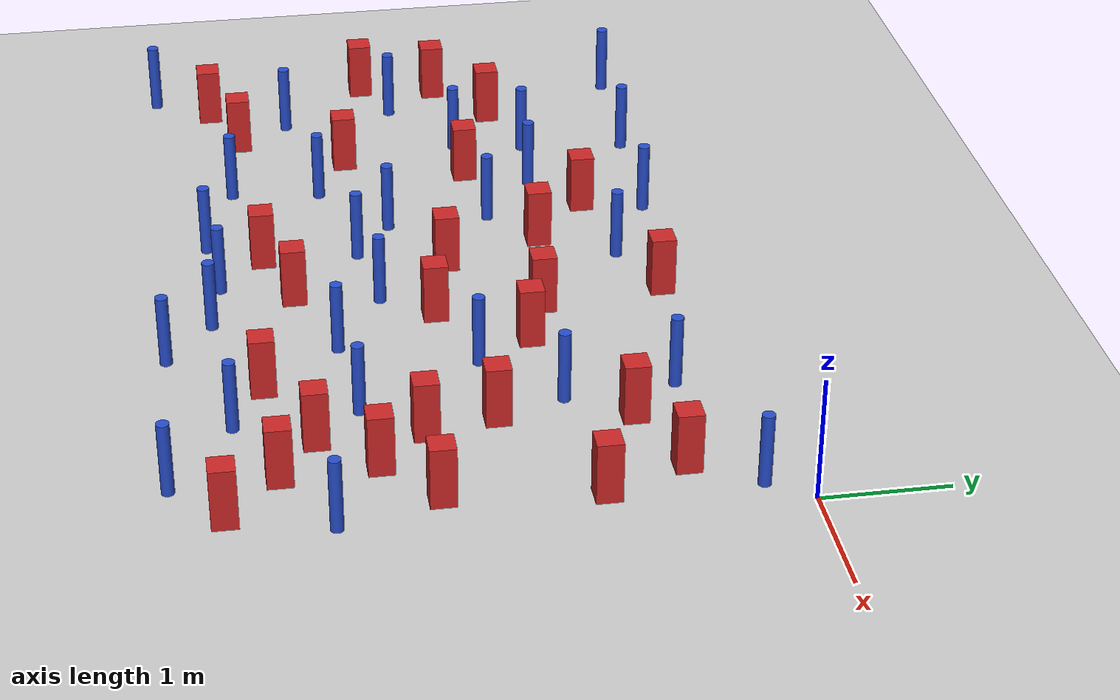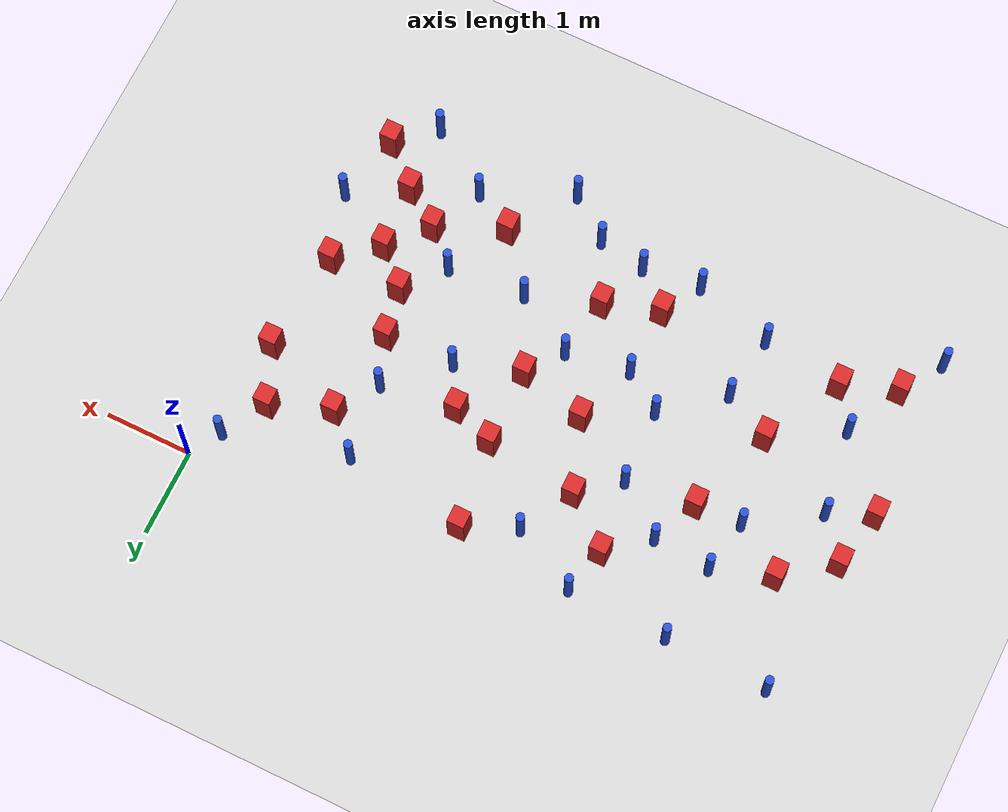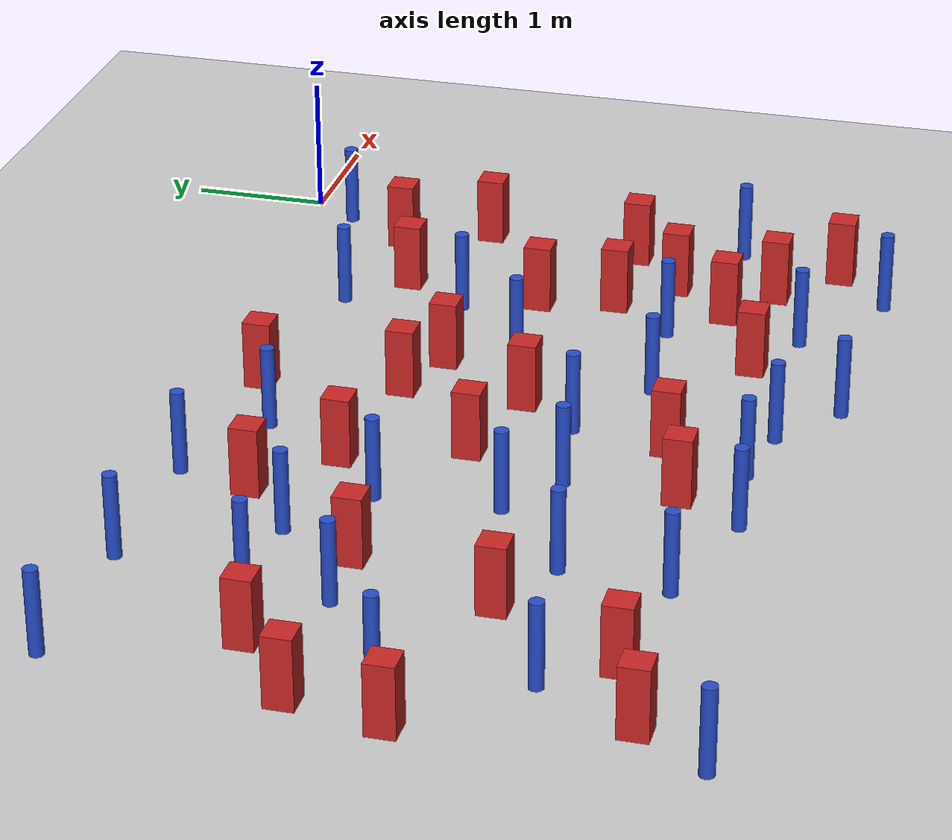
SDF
<sdf version="1.6">
 <world name="default">
  <model name="ground_plane">
   <static>1</static>
   <link name="link">
    <collision name="collision">
     <geometry><plane><normal>0 0 1</normal><size>100 100</size></plane></geometry>
     <surface><friction><ode><mu>100</mu><mu2>50</mu2></ode></friction></surface>
    </collision>
    <visual name="visual">
     <cast_shadows>0</cast_shadows>
     <geometry><plane><normal>0 0 1</normal><size>100 100</size></plane></geometry>
     <material>
      <ambient>1.0 1.0 1.0 1.0</ambient>
      <diffuse>0.8 0.8 0.8 1.0</diffuse>
      <specular>0.01 0.01 0.01 1.000000</specular>
     </material>
    </visual>
   </link>
  </model>
  <model name="pole_obstacle0">
   <static>true</static>
   <pose>-5.73621317295 -1.86977070437 2.88873142074e-08 -9.90536689445e-09 4.60219948999e-07 -1.20965994956e-07</pose>
   <link name="link">
    <pose>0 0 0.3 0 -0 0</pose>
    <inertial>
     <mass>1</mass>
     <inertia><ixx>0.145833</ixx><ixy>0</ixy><ixz>0</ixz><iyy>0.145833</iyy><iyz>0</iyz><izz>0.125</izz></inertia>
    </inertial>
    <collision name="collision">
     <geometry><cylinder><radius>0.05</radius><length>.6</length></cylinder></geometry>
    </collision>
    <visual name="visual">
     <geometry><cylinder><radius>0.05</radius><length>.6</length></cylinder></geometry>
     <material>
      <script><name>Gazebo/Blue</name><uri>file://media/materials/scripts/gazebo.material</uri></script>
     </material>
    </visual>
   </link>
  </model>
  <model name="square_post_obstacle3">
   <static>true</static>
   <pose>-3.93490845107 -3.70287970312 8.22691968438e-08 7.2212513382e-06 -7.54495500217e-07 2.29674213826e-05</pose>
   <link name="link">
    <pose>0 0 0.25 0 -0 0</pose>
    <inertial>
     <mass>100</mass>
     <inertia>
      <ixx>0.166667</ixx>
      <ixy>0</ixy>
      <ixz>0</ixz>
      <iyy>0.166667</iyy>
      <iyz>0</iyz>
      <izz>0.166667</izz>
     </inertia>
    </inertial>
    <collision name="collision"><geometry><box><size>.2 .2 .5</size></box></geometry></collision>
    <visual name="visual">
     <geometry><box><size>.2 .2 .5</size></box></geometry>
     <material>
      <script><name>Gazebo/Red</name><uri>file://media/materials/scripts/gazebo.material</uri></script>
     </material>
    </visual>
   </link>
  </model>
  <model name="square_post_obstacle8">
   <static>true</static>
   <pose>-6.65443698681 -4.00906714522 8.22691968438e-08 7.2212513382e-06 -7.54495500217e-07 2.29674213826e-05</pose>
   <link name="link">
    <pose>0 0 0.25 0 -0 0</pose>
    <inertial>
     <mass>100</mass>
     <inertia>
      <ixx>0.166667</ixx>
      <ixy>0</ixy>
      <ixz>0</ixz>
      <iyy>0.166667</iyy>
      <iyz>0</iyz>
      <izz>0.166667</izz>
     </inertia>
    </inertial>
    <collision name="collision"><geometry><box><size>.2 .2 .5</size></box></geometry></collision>
    <visual name="visual">
     <geometry><box><size>.2 .2 .5</size></box></geometry>
     <material>
      <script><name>Gazebo/Red</name><uri>file://media/materials/scripts/gazebo.material</uri></script>
     </material>
    </visual>
   </link>
  </model>
  <model name="square_post_obstacle14">
   <static>true</static>
   <pose>-2.40461880925 -1.69817275104 8.22691968438e-08 7.2212513382e-06 -7.54495500217e-07 2.29674213826e-05</pose>
   <link name="link">
    <pose>0 0 0.25 0 -0 0</pose>
    <inertial>
     <mass>100</mass>
     <inertia>
      <ixx>0.166667</ixx>
      <ixy>0</ixy>
      <ixz>0</ixz>
      <iyy>0.166667</iyy>
      <iyz>0</iyz>
      <izz>0.166667</izz>
     </inertia>
    </inertial>
    <collision name="collision"><geometry><box><size>.2 .2 .5</size></box></geometry></collision>
    <visual name="visual">
     <geometry><box><size>.2 .2 .5</size></box></geometry>
     <material>
      <script><name>Gazebo/Red</name><uri>file://media/materials/scripts/gazebo.material</uri></script>
     </material>
    </visual>
   </link>
  </model>
  <model name="square_post_obstacle15">
   <static>true</static>
   <pose>-6.2994854559 -1.49680176613 8.22691968438e-08 7.2212513382e-06 -7.54495500217e-07 2.29674213826e-05</pose>
   <link name="link">
    <pose>0 0 0.25 0 -0 0</pose>
    <inertial>
     <mass>100</mass>
     <inertia>
      <ixx>0.166667</ixx>
      <ixy>0</ixy>
      <ixz>0</ixz>
      <iyy>0.166667</iyy>
      <iyz>0</iyz>
      <izz>0.166667</izz>
     </inertia>
    </inertial>
    <collision name="collision"><geometry><box><size>.2 .2 .5</size></box></geometry></collision>
    <visual name="visual">
     <geometry><box><size>.2 .2 .5</size></box></geometry>
     <material>
      <script><name>Gazebo/Red</name><uri>file://media/materials/scripts/gazebo.material</uri></script>
     </material>
    </visual>
   </link>
  </model>
  <model name="pole_obstacle13">
   <static>true</static>
   <pose>-2.48907376419 -3.20972706752 2.88873142074e-08 -9.90536690232e-09 4.6021994898e-07 -1.20965994968e-07</pose>
   <link name="link">
    <pose>0 0 0.3 0 -0 0</pose>
    <inertial>
     <mass>1</mass>
     <inertia><ixx>0.145833</ixx><ixy>0</ixy><ixz>0</ixz><iyy>0.145833</iyy><iyz>0</iyz><izz>0.125</izz></inertia>
    </inertial>
    <collision name="collision">
     <geometry><cylinder><radius>0.05</radius><length>.6</length></cylinder></geometry>
    </collision>
    <visual name="visual">
     <geometry><cylinder><radius>0.05</radius><length>.6</length></cylinder></geometry>
     <material>
      <script><name>Gazebo/Blue</name><uri>file://media/materials/scripts/gazebo.material</uri></script>
     </material>
    </visual>
   </link>
  </model>
  <model name="pole_obstacle14">
   <static>true</static>
   <pose>-3.62674581443 -0.778643688354 2.88873142074e-08 -9.90536690901e-09 4.60219948964e-07 -1.20965994979e-07</pose>
   <link name="link">
    <pose>0 0 0.3 0 -0 0</pose>
    <inertial>
     <mass>1</mass>
     <inertia><ixx>0.145833</ixx><ixy>0</ixy><ixz>0</ixz><iyy>0.145833</iyy><iyz>0</iyz><izz>0.125</izz></inertia>
    </inertial>
    <collision name="collision">
     <geometry><cylinder><radius>0.05</radius><length>.6</length></cylinder></geometry>
    </collision>
    <visual name="visual">
     <geometry><cylinder><radius>0.05</radius><length>.6</length></cylinder></geometry>
     <material>
      <script><name>Gazebo/Blue</name><uri>file://media/materials/scripts/gazebo.material</uri></script>
     </material>
    </visual>
   </link>
  </model>
  <model name="square_post_obstacle34">
   <static>true</static>
   <pose>-0.793222124158 -3.78897731722 8.22691968438e-08 7.2212513382e-06 -7.54495500217e-07 2.29674213826e-05</pose>
   <link name="link">
    <pose>0 0 0.25 0 -0 0</pose>
    <inertial>
     <mass>100</mass>
     <inertia>
      <ixx>0.166667</ixx>
      <ixy>0</ixy>
      <ixz>0</ixz>
      <iyy>0.166667</iyy>
      <iyz>0</iyz>
      <izz>0.166667</izz>
     </inertia>
    </inertial>
    <collision name="collision"><geometry><box><size>.2 .2 .5</size></box></geometry></collision>
    <visual name="visual">
     <geometry><box><size>.2 .2 .5</size></box></geometry>
     <material>
      <script><name>Gazebo/Red</name><uri>file://media/materials/scripts/gazebo.material</uri></script>
     </material>
    </visual>
   </link>
  </model>
  <model name="pole_obstacle31">
   <static>true</static>
   <pose>-4.36352741709 -2.6111760046 2.88873142074e-08 -9.90536690245e-09 4.6021994898e-07 -1.20965994966e-07</pose>
   <link name="link">
    <pose>0 0 0.3 0 -0 0</pose>
    <inertial>
     <mass>1</mass>
     <inertia><ixx>0.145833</ixx><ixy>0</ixy><ixz>0</ixz><iyy>0.145833</iyy><iyz>0</iyz><izz>0.125</izz></inertia>
    </inertial>
    <collision name="collision">
     <geometry><cylinder><radius>0.05</radius><length>.6</length></cylinder></geometry>
    </collision>
    <visual name="visual">
     <geometry><cylinder><radius>0.05</radius><length>.6</length></cylinder></geometry>
     <material>
      <script><name>Gazebo/Blue</name><uri>file://media/materials/scripts/gazebo.material</uri></script>
     </material>
    </visual>
   </link>
  </model>
  <model name="square_post_obstacle50">
   <static>true</static>
   <pose>-1.3356000954 -2.11925762692 8.22691968438e-08 7.2212513382e-06 -7.54495500217e-07 2.29674213826e-05</pose>
   <link name="link">
    <pose>0 0 0.25 0 -0 0</pose>
    <inertial>
     <mass>100</mass>
     <inertia>
      <ixx>0.166667</ixx>
      <ixy>0</ixy>
      <ixz>0</ixz>
      <iyy>0.166667</iyy>
      <iyz>0</iyz>
      <izz>0.166667</izz>
     </inertia>
    </inertial>
    <collision name="collision"><geometry><box><size>.2 .2 .5</size></box></geometry></collision>
    <visual name="visual">
     <geometry><box><size>.2 .2 .5</size></box></geometry>
     <material>
      <script><name>Gazebo/Red</name><uri>file://media/materials/scripts/gazebo.material</uri></script>
     </material>
    </visual>
   </link>
  </model>
  <model name="square_post_obstacle53">
   <static>true</static>
   <pose>-0.530552398193 -0.843113250374 8.22691968438e-08 7.2212513382e-06 -7.54495500217e-07 2.29674213826e-05</pose>
   <link name="link">
    <pose>0 0 0.25 0 -0 0</pose>
    <inertial>
     <mass>100</mass>
     <inertia>
      <ixx>0.166667</ixx>
      <ixy>0</ixy>
      <ixz>0</ixz>
      <iyy>0.166667</iyy>
      <iyz>0</iyz>
      <izz>0.166667</izz>
     </inertia>
    </inertial>
    <collision name="collision"><geometry><box><size>.2 .2 .5</size></box></geometry></collision>
    <visual name="visual">
     <geometry><box><size>.2 .2 .5</size></box></geometry>
     <material>
      <script><name>Gazebo/Red</name><uri>file://media/materials/scripts/gazebo.material</uri></script>
     </material>
    </visual>
   </link>
  </model>
  <model name="square_post_obstacle71">
   <static>true</static>
   <pose>-3.02695674756 -0.522819640471 8.22691968438e-08 7.2212513382e-06 -7.54495500217e-07 2.29674213826e-05</pose>
   <link name="link">
    <pose>0 0 0.25 0 -0 0</pose>
    <inertial>
     <mass>100</mass>
     <inertia>
      <ixx>0.166667</ixx>
      <ixy>0</ixy>
      <ixz>0</ixz>
      <iyy>0.166667</iyy>
      <iyz>0</iyz>
      <izz>0.166667</izz>
     </inertia>
    </inertial>
    <collision name="collision"><geometry><box><size>.2 .2 .5</size></box></geometry></collision>
    <visual name="visual">
     <geometry><box><size>.2 .2 .5</size></box></geometry>
     <material>
      <script><name>Gazebo/Red</name><uri>file://media/materials/scripts/gazebo.material</uri></script>
     </material>
    </visual>
   </link>
  </model>
  <model name="square_post_obstacle74">
   <static>true</static>
   <pose>-0.837840556071 -3.05200155905 8.22691968438e-08 7.2212513382e-06 -7.54495500217e-07 2.29674213826e-05</pose>
   <link name="link">
    <pose>0 0 0.25 0 -0 0</pose>
    <inertial>
     <mass>100</mass>
     <inertia>
      <ixx>0.166667</ixx>
      <ixy>0</ixy>
      <ixz>0</ixz>
      <iyy>0.166667</iyy>
      <iyz>0</iyz>
      <izz>0.166667</izz>
     </inertia>
    </inertial>
    <collision name="collision"><geometry><box><size>.2 .2 .5</size></box></geometry></collision>
    <visual name="visual">
     <geometry><box><size>.2 .2 .5</size></box></geometry>
     <material>
      <script><name>Gazebo/Red</name><uri>file://media/materials/scripts/gazebo.material</uri></script>
     </material>
    </visual>
   </link>
  </model>
  <model name="square_post_obstacle76">
   <static>true</static>
   <pose>-1.21968288241 -2.67342159476 8.22691968438e-08 7.2212513382e-06 -7.54495500217e-07 2.29674213826e-05</pose>
   <link name="link">
    <pose>0 0 0.25 0 -0 0</pose>
    <inertial>
     <mass>100</mass>
     <inertia>
      <ixx>0.166667</ixx>
      <ixy>0</ixy>
      <ixz>0</ixz>
      <iyy>0.166667</iyy>
      <iyz>0</iyz>
      <izz>0.166667</izz>
     </inertia>
    </inertial>
    <collision name="collision"><geometry><box><size>.2 .2 .5</size></box></geometry></collision>
    <visual name="visual">
     <geometry><box><size>.2 .2 .5</size></box></geometry>
     <material>
      <script><name>Gazebo/Red</name><uri>file://media/materials/scripts/gazebo.material</uri></script>
     </material>
    </visual>
   </link>
  </model>
  <model name="pole_obstacle76">
   <static>true</static>
   <pose>-6.33775262903 -3.33607033092 2.88873142074e-08 -9.90536690245e-09 4.6021994898e-07 -1.20965994966e-07</pose>
   <link name="link">
    <pose>0 0 0.3 0 -0 0</pose>
    <inertial>
     <mass>1</mass>
     <inertia><ixx>0.145833</ixx><ixy>0</ixy><ixz>0</ixz><iyy>0.145833</iyy><iyz>0</iyz><izz>0.125</izz></inertia>
    </inertial>
    <collision name="collision">
     <geometry><cylinder><radius>0.05</radius><length>.6</length></cylinder></geometry>
    </collision>
    <visual name="visual">
     <geometry><cylinder><radius>0.05</radius><length>.6</length></cylinder></geometry>
     <material>
      <script><name>Gazebo/Blue</name><uri>file://media/materials/scripts/gazebo.material</uri></script>
     </material>
    </visual>
   </link>
  </model>
  <model name="pole_obstacle78">
   <static>true</static>
   <pose>-4.38180615247 -0.403295523184 2.88873142074e-08 -9.90536689981e-09 4.60219948986e-07 -1.20965994962e-07</pose>
   <link name="link">
    <pose>0 0 0.3 0 -0 0</pose>
    <inertial>
     <mass>1</mass>
     <inertia><ixx>0.145833</ixx><ixy>0</ixy><ixz>0</ixz><iyy>0.145833</iyy><iyz>0</iyz><izz>0.125</izz></inertia>
    </inertial>
    <collision name="collision">
     <geometry><cylinder><radius>0.05</radius><length>.6</length></cylinder></geometry>
    </collision>
    <visual name="visual">
     <geometry><cylinder><radius>0.05</radius><length>.6</length></cylinder></geometry>
     <material>
      <script><name>Gazebo/Blue</name><uri>file://media/materials/scripts/gazebo.material</uri></script>
     </material>
    </visual>
   </link>
  </model>
  <model name="square_post_obstacle79">
   <static>true</static>
   <pose>-1.22335206399 -3.49086152424 8.22691968438e-08 7.2212513382e-06 -7.54495500217e-07 2.29674213826e-05</pose>
   <link name="link">
    <pose>0 0 0.25 0 -0 0</pose>
    <inertial>
     <mass>100</mass>
     <inertia>
      <ixx>0.166667</ixx>
      <ixy>0</ixy>
      <ixz>0</ixz>
      <iyy>0.166667</iyy>
      <iyz>0</iyz>
      <izz>0.166667</izz>
     </inertia>
    </inertial>
    <collision name="collision"><geometry><box><size>.2 .2 .5</size></box></geometry></collision>
    <visual name="visual">
     <geometry><box><size>.2 .2 .5</size></box></geometry>
     <material>
      <script><name>Gazebo/Red</name><uri>file://media/materials/scripts/gazebo.material</uri></script>
     </material>
    </visual>
   </link>
  </model>
  <model name="pole_obstacle82">
   <static>true</static>
   <pose>-3.52373916862 -4.07436821478 2.88873142074e-08 -9.90536689859e-09 4.60219948989e-07 -1.20965994961e-07</pose>
   <link name="link">
    <pose>0 0 0.3 0 -0 0</pose>
    <inertial>
     <mass>1</mass>
     <inertia><ixx>0.145833</ixx><ixy>0</ixy><ixz>0</ixz><iyy>0.145833</iyy><iyz>0</iyz><izz>0.125</izz></inertia>
    </inertial>
    <collision name="collision">
     <geometry><cylinder><radius>0.05</radius><length>.6</length></cylinder></geometry>
    </collision>
    <visual name="visual">
     <geometry><cylinder><radius>0.05</radius><length>.6</length></cylinder></geometry>
     <material>
      <script><name>Gazebo/Blue</name><uri>file://media/materials/scripts/gazebo.material</uri></script>
     </material>
    </visual>
   </link>
  </model>
  <model name="pole_obstacle85">
   <static>true</static>
   <pose>-1.53095376728 -1.57754676346 2.88873142074e-08 -9.90536689672e-09 4.60219948993e-07 -1.20965994959e-07</pose>
   <link name="link">
    <pose>0 0 0.3 0 -0 0</pose>
    <inertial>
     <mass>1</mass>
     <inertia><ixx>0.145833</ixx><ixy>0</ixy><ixz>0</ixz><iyy>0.145833</iyy><iyz>0</iyz><izz>0.125</izz></inertia>
    </inertial>
    <collision name="collision">
     <geometry><cylinder><radius>0.05</radius><length>.6</length></cylinder></geometry>
    </collision>
    <visual name="visual">
     <geometry><cylinder><radius>0.05</radius><length>.6</length></cylinder></geometry>
     <material>
      <script><name>Gazebo/Blue</name><uri>file://media/materials/scripts/gazebo.material</uri></script>
     </material>
    </visual>
   </link>
  </model>
  <model name="pole_obstacle86">
   <static>true</static>
   <pose>-5.63110705443 -1.26578327563 2.88873142074e-08 -9.90536689445e-09 4.60219948999e-07 -1.20965994956e-07</pose>
   <link name="link">
    <pose>0 0 0.3 0 -0 0</pose>
    <inertial>
     <mass>1</mass>
     <inertia><ixx>0.145833</ixx><ixy>0</ixy><ixz>0</ixz><iyy>0.145833</iyy><iyz>0</iyz><izz>0.125</izz></inertia>
    </inertial>
    <collision name="collision">
     <geometry><cylinder><radius>0.05</radius><length>.6</length></cylinder></geometry>
    </collision>
    <visual name="visual">
     <geometry><cylinder><radius>0.05</radius><length>.6</length></cylinder></geometry>
     <material>
      <script><name>Gazebo/Blue</name><uri>file://media/materials/scripts/gazebo.material</uri></script>
     </material>
    </visual>
   </link>
  </model>
  <model name="square_post_obstacle83">
   <static>true</static>
   <pose>-6.98923689157 -2.59152795305 8.22691968438e-08 7.2212513382e-06 -7.54495500217e-07 2.29674213826e-05</pose>
   <link name="link">
    <pose>0 0 0.25 0 -0 0</pose>
    <inertial>
     <mass>100</mass>
     <inertia>
      <ixx>0.166667</ixx>
      <ixy>0</ixy>
      <ixz>0</ixz>
      <iyy>0.166667</iyy>
      <iyz>0</iyz>
      <izz>0.166667</izz>
     </inertia>
    </inertial>
    <collision name="collision"><geometry><box><size>.2 .2 .5</size></box></geometry></collision>
    <visual name="visual">
     <geometry><box><size>.2 .2 .5</size></box></geometry>
     <material>
      <script><name>Gazebo/Red</name><uri>file://media/materials/scripts/gazebo.material</uri></script>
     </material>
    </visual>
   </link>
  </model>
  <model name="pole_obstacle97">
   <static>true</static>
   <pose>-1.59131819325 -3.13100942302 2.88873142074e-08 -9.90536689791e-09 4.6021994899e-07 -1.20965994959e-07</pose>
   <link name="link">
    <pose>0 0 0.3 0 -0 0</pose>
    <inertial>
     <mass>1</mass>
     <inertia><ixx>0.145833</ixx><ixy>0</ixy><ixz>0</ixz><iyy>0.145833</iyy><iyz>0</iyz><izz>0.125</izz></inertia>
    </inertial>
    <collision name="collision">
     <geometry><cylinder><radius>0.05</radius><length>.6</length></cylinder></geometry>
    </collision>
    <visual name="visual">
     <geometry><cylinder><radius>0.05</radius><length>.6</length></cylinder></geometry>
     <material>
      <script><name>Gazebo/Blue</name><uri>file://media/materials/scripts/gazebo.material</uri></script>
     </material>
    </visual>
   </link>
  </model>
  <model name="square_post_obstacle88">
   <static>true</static>
   <pose>-0.260927767086 -1.48294449888 8.22691968438e-08 7.2212513382e-06 -7.54495500217e-07 2.29674213826e-05</pose>
   <link name="link">
    <pose>0 0 0.25 0 -0 0</pose>
    <inertial>
     <mass>100</mass>
     <inertia>
      <ixx>0.166667</ixx>
      <ixy>0</ixy>
      <ixz>0</ixz>
      <iyy>0.166667</iyy>
      <iyz>0</iyz>
      <izz>0.166667</izz>
     </inertia>
    </inertial>
    <collision name="collision"><geometry><box><size>.2 .2 .5</size></box></geometry></collision>
    <visual name="visual">
     <geometry><box><size>.2 .2 .5</size></box></geometry>
     <material>
      <script><name>Gazebo/Red</name><uri>file://media/materials/scripts/gazebo.material</uri></script>
     </material>
    </visual>
   </link>
  </model>
  <model name="pole_obstacle105">
   <static>true</static>
   <pose>-6.73304356078 -0.330908894897 2.88873142074e-08 -9.90536689981e-09 4.60219948986e-07 -1.20965994962e-07</pose>
   <link name="link">
    <pose>0 0 0.3 0 -0 0</pose>
    <inertial>
     <mass>1</mass>
     <inertia><ixx>0.145833</ixx><ixy>0</ixy><ixz>0</ixz><iyy>0.145833</iyy><iyz>0</iyz><izz>0.125</izz></inertia>
    </inertial>
    <collision name="collision">
     <geometry><cylinder><radius>0.05</radius><length>.6</length></cylinder></geometry>
    </collision>
    <visual name="visual">
     <geometry><cylinder><radius>0.05</radius><length>.6</length></cylinder></geometry>
     <material>
      <script><name>Gazebo/Blue</name><uri>file://media/materials/scripts/gazebo.material</uri></script>
     </material>
    </visual>
   </link>
  </model>
  <model name="square_post_obstacle96">
   <static>true</static>
   <pose>-6.85889684813 -1.93279088022 8.22691968438e-08 7.2212513382e-06 -7.54495500217e-07 2.29674213826e-05</pose>
   <link name="link">
    <pose>0 0 0.25 0 -0 0</pose>
    <inertial>
     <mass>100</mass>
     <inertia>
      <ixx>0.166667</ixx>
      <ixy>0</ixy>
      <ixz>0</ixz>
      <iyy>0.166667</iyy>
      <iyz>0</iyz>
      <izz>0.166667</izz>
     </inertia>
    </inertial>
    <collision name="collision"><geometry><box><size>.2 .2 .5</size></box></geometry></collision>
    <visual name="visual">
     <geometry><box><size>.2 .2 .5</size></box></geometry>
     <material>
      <script><name>Gazebo/Red</name><uri>file://media/materials/scripts/gazebo.material</uri></script>
     </material>
    </visual>
   </link>
  </model>
  <model name="square_post_obstacle101">
   <static>true</static>
   <pose>-3.65767526462 -2.20529674431 8.22691968438e-08 7.2212513382e-06 -7.54495500217e-07 2.29674213826e-05</pose>
   <link name="link">
    <pose>0 0 0.25 0 -0 0</pose>
    <inertial>
     <mass>100</mass>
     <inertia>
      <ixx>0.166667</ixx>
      <ixy>0</ixy>
      <ixz>0</ixz>
      <iyy>0.166667</iyy>
      <iyz>0</iyz>
      <izz>0.166667</izz>
     </inertia>
    </inertial>
    <collision name="collision"><geometry><box><size>.2 .2 .5</size></box></geometry></collision>
    <visual name="visual">
     <geometry><box><size>.2 .2 .5</size></box></geometry>
     <material>
      <script><name>Gazebo/Red</name><uri>file://media/materials/scripts/gazebo.material</uri></script>
     </material>
    </visual>
   </link>
  </model>
  <model name="pole_obstacle117">
   <static>true</static>
   <pose>-4.4074099381 -1.75474437956 2.88873142074e-08 -9.90536689445e-09 4.60219948999e-07 -1.20965994956e-07</pose>
   <link name="link">
    <pose>0 0 0.3 0 -0 0</pose>
    <inertial>
     <mass>1</mass>
     <inertia><ixx>0.145833</ixx><ixy>0</ixy><ixz>0</ixz><iyy>0.145833</iyy><iyz>0</iyz><izz>0.125</izz></inertia>
    </inertial>
    <collision name="collision">
     <geometry><cylinder><radius>0.05</radius><length>.6</length></cylinder></geometry>
    </collision>
    <visual name="visual">
     <geometry><cylinder><radius>0.05</radius><length>.6</length></cylinder></geometry>
     <material>
      <script><name>Gazebo/Blue</name><uri>file://media/materials/scripts/gazebo.material</uri></script>
     </material>
    </visual>
   </link>
  </model>
  <model name="pole_obstacle118">
   <static>true</static>
   <pose>-2.13870665297 -2.14572301328 2.88873142074e-08 -9.90536690232e-09 4.6021994898e-07 -1.20965994968e-07</pose>
   <link name="link">
    <pose>0 0 0.3 0 -0 0</pose>
    <inertial>
     <mass>1</mass>
     <inertia><ixx>0.145833</ixx><ixy>0</ixy><ixz>0</ixz><iyy>0.145833</iyy><iyz>0</iyz><izz>0.125</izz></inertia>
    </inertial>
    <collision name="collision">
     <geometry><cylinder><radius>0.05</radius><length>.6</length></cylinder></geometry>
    </collision>
    <visual name="visual">
     <geometry><cylinder><radius>0.05</radius><length>.6</length></cylinder></geometry>
     <material>
      <script><name>Gazebo/Blue</name><uri>file://media/materials/scripts/gazebo.material</uri></script>
     </material>
    </visual>
   </link>
  </model>
  <model name="square_post_obstacle110">
   <static>true</static>
   <pose>-0.351326808303 -4.20900478111 8.22691968438e-08 7.22125133819e-06 -7.54495500217e-07 2.29674213826e-05</pose>
   <link name="link">
    <pose>0 0 0.25 0 -0 0</pose>
    <inertial>
     <mass>100</mass>
     <inertia>
      <ixx>0.166667</ixx>
      <ixy>0</ixy>
      <ixz>0</ixz>
      <iyy>0.166667</iyy>
      <iyz>0</iyz>
      <izz>0.166667</izz>
     </inertia>
    </inertial>
    <collision name="collision"><geometry><box><size>.2 .2 .5</size></box></geometry></collision>
    <visual name="visual">
     <geometry><box><size>.2 .2 .5</size></box></geometry>
     <material>
      <script><name>Gazebo/Red</name><uri>file://media/materials/scripts/gazebo.material</uri></script>
     </material>
    </visual>
   </link>
  </model>
  <model name="pole_obstacle124">
   <static>true</static>
   <pose>-3.92080524633 -2.91569860323 2.88873142074e-08 -9.90536690232e-09 4.6021994898e-07 -1.20965994968e-07</pose>
   <link name="link">
    <pose>0 0 0.3 0 -0 0</pose>
    <inertial>
     <mass>1</mass>
     <inertia><ixx>0.145833</ixx><ixy>0</ixy><ixz>0</ixz><iyy>0.145833</iyy><iyz>0</iyz><izz>0.125</izz></inertia>
    </inertial>
    <collision name="collision">
     <geometry><cylinder><radius>0.05</radius><length>.6</length></cylinder></geometry>
    </collision>
    <visual name="visual">
     <geometry><cylinder><radius>0.05</radius><length>.6</length></cylinder></geometry>
     <material>
      <script><name>Gazebo/Blue</name><uri>file://media/materials/scripts/gazebo.material</uri></script>
     </material>
    </visual>
   </link>
  </model>
  <model name="pole_obstacle131">
   <static>true</static>
   <pose>-5.53843773097 -0.373888443508 2.88873142074e-08 -9.90536689981e-09 4.60219948986e-07 -1.20965994962e-07</pose>
   <link name="link">
    <pose>0 0 0.3 0 -0 0</pose>
    <inertial>
     <mass>1</mass>
     <inertia><ixx>0.145833</ixx><ixy>0</ixy><ixz>0</ixz><iyy>0.145833</iyy><iyz>0</iyz><izz>0.125</izz></inertia>
    </inertial>
    <collision name="collision">
     <geometry><cylinder><radius>0.05</radius><length>.6</length></cylinder></geometry>
    </collision>
    <visual name="visual">
     <geometry><cylinder><radius>0.05</radius><length>.6</length></cylinder></geometry>
     <material>
      <script><name>Gazebo/Blue</name><uri>file://media/materials/scripts/gazebo.material</uri></script>
     </material>
    </visual>
   </link>
  </model>
  <model name="pole_obstacle137">
   <static>true</static>
   <pose>-2.49778996372 -4.5484734979 2.88873142074e-08 -9.90536689859e-09 4.60219948989e-07 -1.20965994961e-07</pose>
   <link name="link">
    <pose>0 0 0.3 0 -0 0</pose>
    <inertial>
     <mass>1</mass>
     <inertia><ixx>0.145833</ixx><ixy>0</ixy><ixz>0</ixz><iyy>0.145833</iyy><iyz>0</iyz><izz>0.125</izz></inertia>
    </inertial>
    <collision name="collision">
     <geometry><cylinder><radius>0.05</radius><length>.6</length></cylinder></geometry>
    </collision>
    <visual name="visual">
     <geometry><cylinder><radius>0.05</radius><length>.6</length></cylinder></geometry>
     <material>
      <script><name>Gazebo/Blue</name><uri>file://media/materials/scripts/gazebo.material</uri></script>
     </material>
    </visual>
   </link>
  </model>
  <model name="square_post_obstacle127">
   <static>true</static>
   <pose>-2.89201172745 -1.5203794054 8.22691968438e-08 7.2212513382e-06 -7.54495500217e-07 2.29674213826e-05</pose>
   <link name="link">
    <pose>0 0 0.25 0 -0 0</pose>
    <inertial>
     <mass>100</mass>
     <inertia>
      <ixx>0.166667</ixx>
      <ixy>0</ixy>
      <ixz>0</ixz>
      <iyy>0.166667</iyy>
      <iyz>0</iyz>
      <izz>0.166667</izz>
     </inertia>
    </inertial>
    <collision name="collision"><geometry><box><size>.2 .2 .5</size></box></geometry></collision>
    <visual name="visual">
     <geometry><box><size>.2 .2 .5</size></box></geometry>
     <material>
      <script><name>Gazebo/Red</name><uri>file://media/materials/scripts/gazebo.material</uri></script>
     </material>
    </visual>
   </link>
  </model>
  <model name="square_post_obstacle129">
   <static>true</static>
   <pose>-1.98834079182 -3.82836310725 8.22691968438e-08 7.2212513382e-06 -7.54495500217e-07 2.29674213826e-05</pose>
   <link name="link">
    <pose>0 0 0.25 0 -0 0</pose>
    <inertial>
     <mass>100</mass>
     <inertia>
      <ixx>0.166667</ixx>
      <ixy>0</ixy>
      <ixz>0</ixz>
      <iyy>0.166667</iyy>
      <iyz>0</iyz>
      <izz>0.166667</izz>
     </inertia>
    </inertial>
    <collision name="collision"><geometry><box><size>.2 .2 .5</size></box></geometry></collision>
    <visual name="visual">
     <geometry><box><size>.2 .2 .5</size></box></geometry>
     <material>
      <script><name>Gazebo/Red</name><uri>file://media/materials/scripts/gazebo.material</uri></script>
     </material>
    </visual>
   </link>
  </model>
  <model name="square_post_obstacle133">
   <static>true</static>
   <pose>-3.29880835186 -3.49312695787 8.22691968438e-08 7.2212513382e-06 -7.54495500217e-07 2.29674213826e-05</pose>
   <link name="link">
    <pose>0 0 0.25 0 -0 0</pose>
    <inertial>
     <mass>100</mass>
     <inertia>
      <ixx>0.166667</ixx>
      <ixy>0</ixy>
      <ixz>0</ixz>
      <iyy>0.166667</iyy>
      <iyz>0</iyz>
      <izz>0.166667</izz>
     </inertia>
    </inertial>
    <collision name="collision"><geometry><box><size>.2 .2 .5</size></box></geometry></collision>
    <visual name="visual">
     <geometry><box><size>.2 .2 .5</size></box></geometry>
     <material>
      <script><name>Gazebo/Red</name><uri>file://media/materials/scripts/gazebo.material</uri></script>
     </material>
    </visual>
   </link>
  </model>
  <model name="square_post_obstacle136">
   <static>true</static>
   <pose>-5.55238792229 -2.87551508057 8.22691968438e-08 7.2212513382e-06 -7.54495500217e-07 2.29674213826e-05</pose>
   <link name="link">
    <pose>0 0 0.25 0 -0 0</pose>
    <inertial>
     <mass>100</mass>
     <inertia>
      <ixx>0.166667</ixx>
      <ixy>0</ixy>
      <ixz>0</ixz>
      <iyy>0.166667</iyy>
      <iyz>0</iyz>
      <izz>0.166667</izz>
     </inertia>
    </inertial>
    <collision name="collision"><geometry><box><size>.2 .2 .5</size></box></geometry></collision>
    <visual name="visual">
     <geometry><box><size>.2 .2 .5</size></box></geometry>
     <material>
      <script><name>Gazebo/Red</name><uri>file://media/materials/scripts/gazebo.material</uri></script>
     </material>
    </visual>
   </link>
  </model>
  <model name="square_post_obstacle140">
   <static>true</static>
   <pose>-3.96395808822 -1.38840826953 8.22691968438e-08 7.2212513382e-06 -7.54495500217e-07 2.29674213826e-05</pose>
   <link name="link">
    <pose>0 0 0.25 0 -0 0</pose>
    <inertial>
     <mass>100</mass>
     <inertia>
      <ixx>0.166667</ixx>
      <ixy>0</ixy>
      <ixz>0</ixz>
      <iyy>0.166667</iyy>
      <iyz>0</iyz>
      <izz>0.166667</izz>
     </inertia>
    </inertial>
    <collision name="collision"><geometry><box><size>.2 .2 .5</size></box></geometry></collision>
    <visual name="visual">
     <geometry><box><size>.2 .2 .5</size></box></geometry>
     <material>
      <script><name>Gazebo/Red</name><uri>file://media/materials/scripts/gazebo.material</uri></script>
     </material>
    </visual>
   </link>
  </model>
  <model name="pole_obstacle154">
   <static>true</static>
   <pose>-6.49810095533 -2.37337574699 2.88873142074e-08 -9.90536690245e-09 4.6021994898e-07 -1.20965994966e-07</pose>
   <link name="link">
    <pose>0 0 0.3 0 -0 0</pose>
    <inertial>
     <mass>1</mass>
     <inertia><ixx>0.145833</ixx><ixy>0</ixy><ixz>0</ixz><iyy>0.145833</iyy><iyz>0</iyz><izz>0.125</izz></inertia>
    </inertial>
    <collision name="collision">
     <geometry><cylinder><radius>0.05</radius><length>.6</length></cylinder></geometry>
    </collision>
    <visual name="visual">
     <geometry><cylinder><radius>0.05</radius><length>.6</length></cylinder></geometry>
     <material>
      <script><name>Gazebo/Blue</name><uri>file://media/materials/scripts/gazebo.material</uri></script>
     </material>
    </visual>
   </link>
  </model>
  <model name="pole_obstacle157">
   <static>true</static>
   <pose>-0.767910330312 -4.59238819882 2.88873142074e-08 -9.90536689661e-09 4.60219948993e-07 -1.20965994957e-07</pose>
   <link name="link">
    <pose>0 0 0.3 0 -0 0</pose>
    <inertial>
     <mass>1</mass>
     <inertia><ixx>0.145833</ixx><ixy>0</ixy><ixz>0</ixz><iyy>0.145833</iyy><iyz>0</iyz><izz>0.125</izz></inertia>
    </inertial>
    <collision name="collision">
     <geometry><cylinder><radius>0.05</radius><length>.6</length></cylinder></geometry>
    </collision>
    <visual name="visual">
     <geometry><cylinder><radius>0.05</radius><length>.6</length></cylinder></geometry>
     <material>
      <script><name>Gazebo/Blue</name><uri>file://media/materials/scripts/gazebo.material</uri></script>
     </material>
    </visual>
   </link>
  </model>
  <model name="pole_obstacle165">
   <static>true</static>
   <pose>-3.1827085858 -2.80633337336 2.88873142074e-08 -9.90536689597e-09 4.60219948995e-07 -1.20965994957e-07</pose>
   <link name="link">
    <pose>0 0 0.3 0 -0 0</pose>
    <inertial>
     <mass>1</mass>
     <inertia><ixx>0.145833</ixx><ixy>0</ixy><ixz>0</ixz><iyy>0.145833</iyy><iyz>0</iyz><izz>0.125</izz></inertia>
    </inertial>
    <collision name="collision">
     <geometry><cylinder><radius>0.05</radius><length>.6</length></cylinder></geometry>
    </collision>
    <visual name="visual">
     <geometry><cylinder><radius>0.05</radius><length>.6</length></cylinder></geometry>
     <material>
      <script><name>Gazebo/Blue</name><uri>file://media/materials/scripts/gazebo.material</uri></script>
     </material>
    </visual>
   </link>
  </model>
  <model name="pole_obstacle167">
   <static>true</static>
   <pose>-5.10539921125 -3.89098051494 2.88873142074e-08 -9.90536690245e-09 4.6021994898e-07 -1.20965994966e-07</pose>
   <link name="link">
    <pose>0 0 0.3 0 -0 0</pose>
    <inertial>
     <mass>1</mass>
     <inertia><ixx>0.145833</ixx><ixy>0</ixy><ixz>0</ixz><iyy>0.145833</iyy><iyz>0</iyz><izz>0.125</izz></inertia>
    </inertial>
    <collision name="collision">
     <geometry><cylinder><radius>0.05</radius><length>.6</length></cylinder></geometry>
    </collision>
    <visual name="visual">
     <geometry><cylinder><radius>0.05</radius><length>.6</length></cylinder></geometry>
     <material>
      <script><name>Gazebo/Blue</name><uri>file://media/materials/scripts/gazebo.material</uri></script>
     </material>
    </visual>
   </link>
  </model>
  <model name="pole_obstacle168">
   <static>true</static>
   <pose>-0.231119203517 -0.334835147708 2.88873142074e-08 -9.90536689954e-09 4.60219948986e-07 -1.20965994961e-07</pose>
   <link name="link">
    <pose>0 0 0.3 0 -0 0</pose>
    <inertial>
     <mass>1</mass>
     <inertia><ixx>0.145833</ixx><ixy>0</ixy><ixz>0</ixz><iyy>0.145833</iyy><iyz>0</iyz><izz>0.125</izz></inertia>
    </inertial>
    <collision name="collision">
     <geometry><cylinder><radius>0.05</radius><length>.6</length></cylinder></geometry>
    </collision>
    <visual name="visual">
     <geometry><cylinder><radius>0.05</radius><length>.6</length></cylinder></geometry>
     <material>
      <script><name>Gazebo/Blue</name><uri>file://media/materials/scripts/gazebo.material</uri></script>
     </material>
    </visual>
   </link>
  </model>
  <model name="pole_obstacle175">
   <static>true</static>
   <pose>-4.19951597323 -4.15375741482 2.88873142074e-08 -9.90536690842e-09 4.60219948965e-07 -1.20965994976e-07</pose>
   <link name="link">
    <pose>0 0 0.3 0 -0 0</pose>
    <inertial>
     <mass>1</mass>
     <inertia><ixx>0.145833</ixx><ixy>0</ixy><ixz>0</ixz><iyy>0.145833</iyy><iyz>0</iyz><izz>0.125</izz></inertia>
    </inertial>
    <collision name="collision">
     <geometry><cylinder><radius>0.05</radius><length>.6</length></cylinder></geometry>
    </collision>
    <visual name="visual">
     <geometry><cylinder><radius>0.05</radius><length>.6</length></cylinder></geometry>
     <material>
      <script><name>Gazebo/Blue</name><uri>file://media/materials/scripts/gazebo.material</uri></script>
     </material>
    </visual>
   </link>
  </model>
  <model name="pole_obstacle178">
   <static>true</static>
   <pose>-6.9643233497 -4.48901441986 2.88873142074e-08 -9.90536690842e-09 4.60219948965e-07 -1.20965994976e-07</pose>
   <link name="link">
    <pose>0 0 0.3 0 -0 0</pose>
    <inertial>
     <mass>1</mass>
     <inertia><ixx>0.145833</ixx><ixy>0</ixy><ixz>0</ixz><iyy>0.145833</iyy><iyz>0</iyz><izz>0.125</izz></inertia>
    </inertial>
    <collision name="collision">
     <geometry><cylinder><radius>0.05</radius><length>.6</length></cylinder></geometry>
    </collision>
    <visual name="visual">
     <geometry><cylinder><radius>0.05</radius><length>.6</length></cylinder></geometry>
     <material>
      <script><name>Gazebo/Blue</name><uri>file://media/materials/scripts/gazebo.material</uri></script>
     </material>
    </visual>
   </link>
  </model>
  <model name="pole_obstacle179">
   <static>true</static>
   <pose>-4.96792931326 -1.31155684839 2.88873142074e-08 -9.90536689445e-09 4.60219948999e-07 -1.20965994956e-07</pose>
   <link name="link">
    <pose>0 0 0.3 0 -0 0</pose>
    <inertial>
     <mass>1</mass>
     <inertia><ixx>0.145833</ixx><ixy>0</ixy><ixz>0</ixz><iyy>0.145833</iyy><iyz>0</iyz><izz>0.125</izz></inertia>
    </inertial>
    <collision name="collision">
     <geometry><cylinder><radius>0.05</radius><length>.6</length></cylinder></geometry>
    </collision>
    <visual name="visual">
     <geometry><cylinder><radius>0.05</radius><length>.6</length></cylinder></geometry>
     <material>
      <script><name>Gazebo/Blue</name><uri>file://media/materials/scripts/gazebo.material</uri></script>
     </material>
    </visual>
   </link>
  </model>
  <model name="square_post_obstacle179">
   <static>true</static>
   <pose>-5.19939292643 -1.85012563516 8.22691968438e-08 7.2212513382e-06 -7.54495500217e-07 2.29674213826e-05</pose>
   <link name="link">
    <pose>0 0 0.25 0 -0 0</pose>
    <inertial>
     <mass>100</mass>
     <inertia>
      <ixx>0.166667</ixx>
      <ixy>0</ixy>
      <ixz>0</ixz>
      <iyy>0.166667</iyy>
      <iyz>0</iyz>
      <izz>0.166667</izz>
     </inertia>
    </inertial>
    <collision name="collision"><geometry><box><size>.2 .2 .5</size></box></geometry></collision>
    <visual name="visual">
     <geometry><box><size>.2 .2 .5</size></box></geometry>
     <material>
      <script><name>Gazebo/Red</name><uri>file://media/materials/scripts/gazebo.material</uri></script>
     </material>
    </visual>
   </link>
  </model>
  <model name="pole_obstacle190">
   <static>true</static>
   <pose>-2.97330271938 -4.17077761238 2.88873142074e-08 -9.90536689859e-09 4.60219948989e-07 -1.20965994961e-07</pose>
   <link name="link">
    <pose>0 0 0.3 0 -0 0</pose>
    <inertial>
     <mass>1</mass>
     <inertia><ixx>0.145833</ixx><ixy>0</ixy><ixz>0</ixz><iyy>0.145833</iyy><iyz>0</iyz><izz>0.125</izz></inertia>
    </inertial>
    <collision name="collision">
     <geometry><cylinder><radius>0.05</radius><length>.6</length></cylinder></geometry>
    </collision>
    <visual name="visual">
     <geometry><cylinder><radius>0.05</radius><length>.6</length></cylinder></geometry>
     <material>
      <script><name>Gazebo/Blue</name><uri>file://media/materials/scripts/gazebo.material</uri></script>
     </material>
    </visual>
   </link>
  </model>
  <model name="square_post_obstacle187">
   <static>true</static>
   <pose>-6.03239046255 -3.77434048811 8.22691968438e-08 7.2212513382e-06 -7.54495500217e-07 2.29674213826e-05</pose>
   <link name="link">
    <pose>0 0 0.25 0 -0 0</pose>
    <inertial>
     <mass>100</mass>
     <inertia>
      <ixx>0.166667</ixx>
      <ixy>0</ixy>
      <ixz>0</ixz>
      <iyy>0.166667</iyy>
      <iyz>0</iyz>
      <izz>0.166667</izz>
     </inertia>
    </inertial>
    <collision name="collision"><geometry><box><size>.2 .2 .5</size></box></geometry></collision>
    <visual name="visual">
     <geometry><box><size>.2 .2 .5</size></box></geometry>
     <material>
      <script><name>Gazebo/Red</name><uri>file://media/materials/scripts/gazebo.material</uri></script>
     </material>
    </visual>
   </link>
  </model>
  <model name="pole_obstacle193">
   <static>true</static>
   <pose>-1.5032848476 -4.08856750796 2.88873142074e-08 -9.90536689852e-09 4.60219948989e-07 -1.2096599496e-07</pose>
   <link name="link">
    <pose>0 0 0.3 0 -0 0</pose>
    <inertial>
     <mass>1</mass>
     <inertia><ixx>0.145833</ixx><ixy>0</ixy><ixz>0</ixz><iyy>0.145833</iyy><iyz>0</iyz><izz>0.125</izz></inertia>
    </inertial>
    <collision name="collision">
     <geometry><cylinder><radius>0.05</radius><length>.6</length></cylinder></geometry>
    </collision>
    <visual name="visual">
     <geometry><cylinder><radius>0.05</radius><length>.6</length></cylinder></geometry>
     <material>
      <script><name>Gazebo/Blue</name><uri>file://media/materials/scripts/gazebo.material</uri></script>
     </material>
    </visual>
   </link>
  </model>
  <model name="pole_obstacle201">
   <static>true</static>
   <pose>-1.61514388203 -0.700624427218 2.88873142074e-08 -9.90536689692e-09 4.60219948993e-07 -1.20965994958e-07</pose>
   <link name="link">
    <pose>0 0 0.3 0 -0 0</pose>
    <inertial>
     <mass>1</mass>
     <inertia><ixx>0.145833</ixx><ixy>0</ixy><ixz>0</ixz><iyy>0.145833</iyy><iyz>0</iyz><izz>0.125</izz></inertia>
    </inertial>
    <collision name="collision">
     <geometry><cylinder><radius>0.05</radius><length>.6</length></cylinder></geometry>
    </collision>
    <visual name="visual">
     <geometry><cylinder><radius>0.05</radius><length>.6</length></cylinder></geometry>
     <material>
      <script><name>Gazebo/Blue</name><uri>file://media/materials/scripts/gazebo.material</uri></script>
     </material>
    </visual>
   </link>
  </model>
  <model name="pole_obstacle217">
   <static>true</static>
   <pose>-5.01194508439 -3.14560555953 2.88873142074e-08 -9.90536690245e-09 4.6021994898e-07 -1.20965994966e-07</pose>
   <link name="link">
    <pose>0 0 0.3 0 -0 0</pose>
    <inertial>
     <mass>1</mass>
     <inertia><ixx>0.145833</ixx><ixy>0</ixy><ixz>0</ixz><iyy>0.145833</iyy><iyz>0</iyz><izz>0.125</izz></inertia>
    </inertial>
    <collision name="collision">
     <geometry><cylinder><radius>0.05</radius><length>.6</length></cylinder></geometry>
    </collision>
    <visual name="visual">
     <geometry><cylinder><radius>0.05</radius><length>.6</length></cylinder></geometry>
     <material>
      <script><name>Gazebo/Blue</name><uri>file://media/materials/scripts/gazebo.material</uri></script>
     </material>
    </visual>
   </link>
  </model>
  <model name="pole_obstacle224">
   <static>true</static>
   <pose>-0.14829801065 -3.43227425762 2.88873142074e-08 -9.9053669244e-09 4.60219948928e-07 -1.20965994988e-07</pose>
   <link name="link">
    <pose>0 0 0.3 0 -0 0</pose>
    <inertial>
     <mass>1</mass>
     <inertia><ixx>0.145833</ixx><ixy>0</ixy><ixz>0</ixz><iyy>0.145833</iyy><iyz>0</iyz><izz>0.125</izz></inertia>
    </inertial>
    <collision name="collision">
     <geometry><cylinder><radius>0.05</radius><length>.6</length></cylinder></geometry>
    </collision>
    <visual name="visual">
     <geometry><cylinder><radius>0.05</radius><length>.6</length></cylinder></geometry>
     <material>
      <script><name>Gazebo/Blue</name><uri>file://media/materials/scripts/gazebo.material</uri></script>
     </material>
    </visual>
   </link>
  </model>
  <model name="square_post_obstacle203">
   <static>true</static>
   <pose>-4.50663996738 -0.929120035341 8.22691968438e-08 7.2212513382e-06 -7.54495500217e-07 2.29674213826e-05</pose>
   <link name="link">
    <pose>0 0 0.25 0 -0 0</pose>
    <inertial>
     <mass>100</mass>
     <inertia>
      <ixx>0.166667</ixx>
      <ixy>0</ixy>
      <ixz>0</ixz>
      <iyy>0.166667</iyy>
      <iyz>0</iyz>
      <izz>0.166667</izz>
     </inertia>
    </inertial>
    <collision name="collision"><geometry><box><size>.2 .2 .5</size></box></geometry></collision>
    <visual name="visual">
     <geometry><box><size>.2 .2 .5</size></box></geometry>
     <material>
      <script><name>Gazebo/Red</name><uri>file://media/materials/scripts/gazebo.material</uri></script>
     </material>
    </visual>
   </link>
  </model>
  <model name="square_post_obstacle204">
   <static>true</static>
   <pose>-2.88554996738 -2.39486003534 8.22691968438e-08 7.2212513382e-06 -7.54495500217e-07 2.29674213826e-05</pose>
   <link name="link">
    <pose>0 0 0.25 0 -0 0</pose>
    <inertial>
     <mass>100</mass>
     <inertia>
      <ixx>0.166667</ixx>
      <ixy>0</ixy>
      <ixz>0</ixz>
      <iyy>0.166667</iyy>
      <iyz>0</iyz>
      <izz>0.166667</izz>
     </inertia>
    </inertial>
    <collision name="collision"><geometry><box><size>.2 .2 .5</size></box></geometry></collision>
    <visual name="visual">
     <geometry><box><size>.2 .2 .5</size></box></geometry>
     <material>
      <script><name>Gazebo/Red</name><uri>file://media/materials/scripts/gazebo.material</uri></script>
     </material>
    </visual>
   </link>
  </model>
  <model name="square_post_obstacle208">
   <static>true</static>
   <pose>-1.22039996738 -1.09571003534 8.22691968438e-08 7.22125133819e-06 -7.54495500217e-07 2.29674213826e-05</pose>
   <link name="link">
    <pose>0 0 0.25 0 -0 0</pose>
    <inertial>
     <mass>100</mass>
     <inertia>
      <ixx>0.166667</ixx>
      <ixy>0</ixy>
      <ixz>0</ixz>
      <iyy>0.166667</iyy>
      <iyz>0</iyz>
      <izz>0.166667</izz>
     </inertia>
    </inertial>
    <collision name="collision"><geometry><box><size>.2 .2 .5</size></box></geometry></collision>
    <visual name="visual">
     <geometry><box><size>.2 .2 .5</size></box></geometry>
     <material>
      <script><name>Gazebo/Red</name><uri>file://media/materials/scripts/gazebo.material</uri></script>
     </material>
    </visual>
   </link>
  </model>
  <model name="square_post_obstacle213">
   <static>true</static>
   <pose>-0.379688967378 -2.65829003534 8.22691968438e-08 7.2212513382e-06 -7.54495500217e-07 2.29674213826e-05</pose>
   <link name="link">
    <pose>0 0 0.25 0 -0 0</pose>
    <inertial>
     <mass>100</mass>
     <inertia>
      <ixx>0.166667</ixx>
      <ixy>0</ixy>
      <ixz>0</ixz>
      <iyy>0.166667</iyy>
      <iyz>0</iyz>
      <izz>0.166667</izz>
     </inertia>
    </inertial>
    <collision name="collision"><geometry><box><size>.2 .2 .5</size></box></geometry></collision>
    <visual name="visual">
     <geometry><box><size>.2 .2 .5</size></box></geometry>
     <material>
      <script><name>Gazebo/Red</name><uri>file://media/materials/scripts/gazebo.material</uri></script>
     </material>
    </visual>
   </link>
  </model>
 </world>
</sdf>
